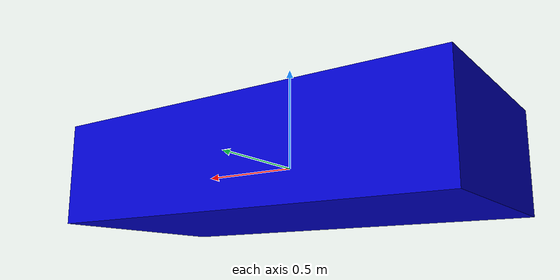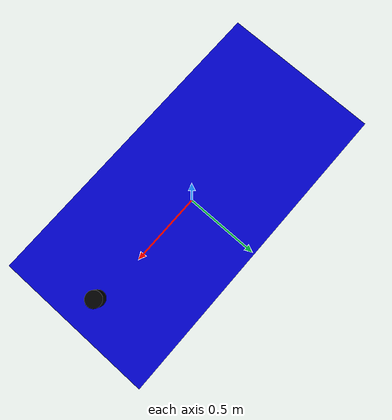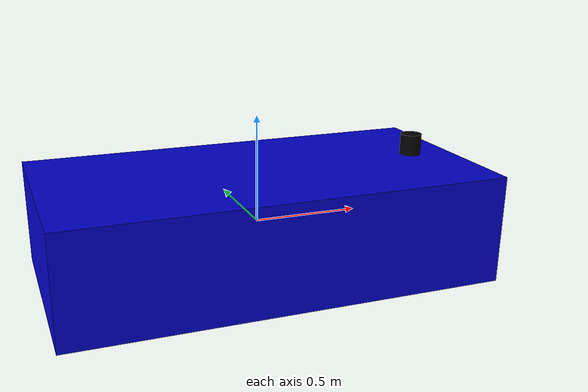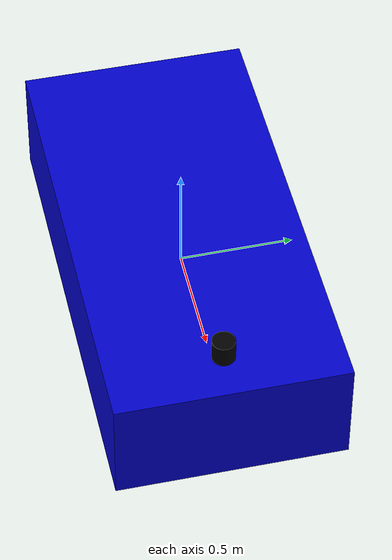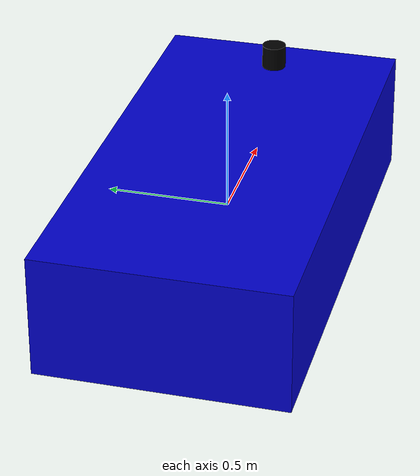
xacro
<?xml version="1.0"?>
<robot name="simple_usv" xmlns:xacro="http://www.ros.org/wiki/xacro">

  <xacro:property name="hull_length" value="2.0" />
  <xacro:property name="hull_width" value="1.0" />
  <xacro:property name="hull_height" value="0.5" />

  <link name="base_link">
    <visual>
      <geometry>
        <box size="${hull_length} ${hull_width} ${hull_height}"/>
      </geometry>
      <material name="blue">
        <color rgba="0 0 0.8 1"/>
      </material>
    </visual>
    <collision>
      <geometry>
        <box size="${hull_length} ${hull_width} ${hull_height}"/>
      </geometry>
    </collision>
    <inertial>
      <mass value="50.0"/>
      <inertia ixx="5.0" ixy="0" ixz="0" iyy="5.0" iyz="0" izz="10.0"/>
    </inertial>
  </link>

  <link name="laser_link">
    <visual>
      <geometry>
        <cylinder radius="0.05" length="0.1"/>
      </geometry>
      <material name="black"><color rgba="0 0 0 1"/></material>
    </visual>
  </link>

  <joint name="laser_joint" type="fixed">
    <parent link="base_link"/>
    <child link="laser_link"/>
    <origin xyz="0.8 0 0.3" rpy="0 0 0"/> </joint>

  <gazebo reference="laser_link">
    <sensor type="ray" name="head_hokuyo_sensor">
      <pose>0 0 0 0 0 0</pose>
      <visualize>true</visualize> <update_rate>10</update_rate>
      <ray>
        <scan>
          <horizontal>
            <samples>720</samples>
            <resolution>1</resolution>
            <min_angle>-3.14159</min_angle>
            <max_angle>3.14159</max_angle>
          </horizontal>
        </scan>
        <range>
          <min>0.10</min>
          <max>30.0</max>
          <resolution>0.01</resolution>
        </range>
      </ray>
      <plugin name="gazebo_ros_head_hokuyo_controller" filename="libgazebo_ros_laser.so">
        <topicName>/scan</topicName>
        <frameName>laser_link</frameName>
      </plugin>
    </sensor>
  </gazebo>

  <gazebo>
    <plugin name="object_controller" filename="libgazebo_ros_planar_move.so">
      <commandTopic>cmd_vel</commandTopic>
      <odometryTopic>odom</odometryTopic>
      <odometryFrame>odom</odometryFrame>
      <odometryRate>20.0</odometryRate>
      <robotBaseFrame>base_link</robotBaseFrame>
    </plugin>
  </gazebo>

  <gazebo reference="base_link">
    <material>Gazebo/Blue</material>
  </gazebo>

</robot>
